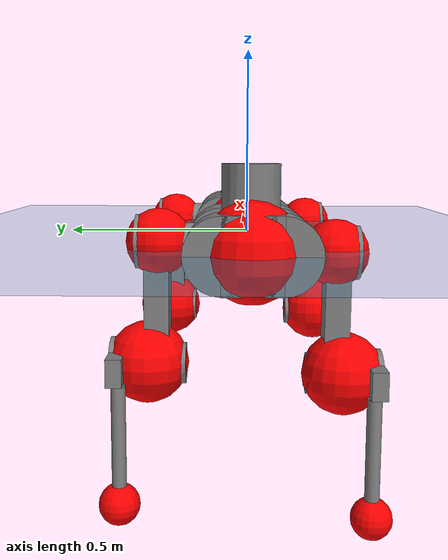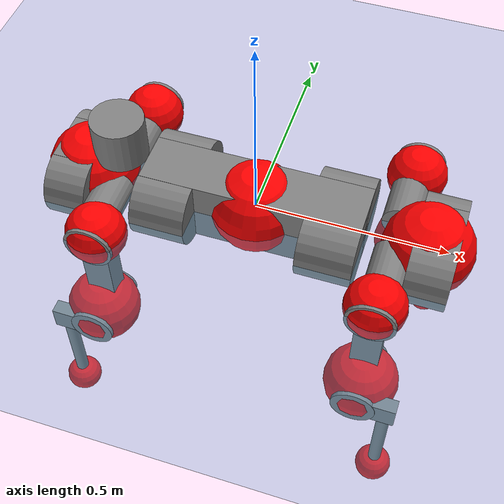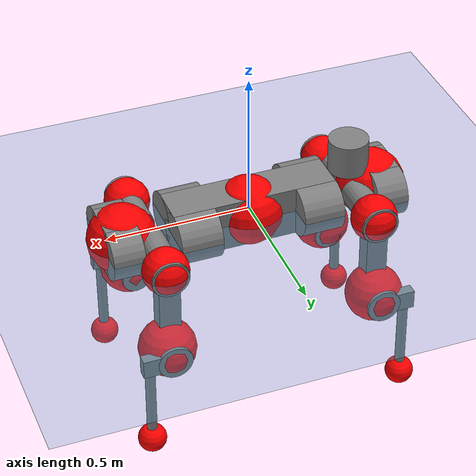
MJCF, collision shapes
<mujoco model="anymal_c">
  <compiler angle="radian" assetdir="assets" balanceinertia="true" inertiafromgeom="false"/>

  <option timestep="0.005" density="1.2" viscosity="2e-05"/>

  <size nkey="1"/>

  <visual>
    <quality shadowsize="8192"/>
    <map shadowclip="0.5"/>
  </visual>

  <default>
    <default class="/">
      <material specular="0" shininess="0.25"/>
      <geom contype="0" conaffinity="0" group="1" solref="-1000 -80"/>
      <site size="0.01 0.005 0.005" group="5"/>
      <general forcelimited="true" forcerange="-80 80" biastype="affine" gainprm="80" biasprm="0 -80 -2"/>
      <default class="anymal_c">
        <joint armature="0.01" damping="0.01" frictionloss="0.1"/>
        <default class="visual">
          <geom type="mesh" group="2"/>
          <default class="visual_zflip"/>
        </default>
        <default class="collision">
          <geom type="cylinder" group="3"/>
          <default class="foot">
            <geom size="0.03 0 0" type="sphere" condim="6" priority="1" friction="0.8 0.02 0.01" solimp="0.015 1 0.03"/>
          </default>
        </default>
      </default>
      <default class="reward_collision_sphere">
        <geom group="5" rgba="1 0 0 1"/>
      </default>
    </default>
  </default>

  <asset>
    <texture type="skybox" colorspace="auto" name="//unnamed_texture_0" builtin="gradient" rgb1="0.95 0.95 0.95" rgb2="0.95 0.95 0.95" width="100" height="600"/>
    <texture type="2d" colorspace="auto" name="texplane" builtin="checker" rgb1="0.345 0.575 0.748" rgb2="0.345 0.575 0.748" markrgb="1 1 1" width="512" height="512"/>
    <texture type="2d" colorspace="linear" name="base" file="base.png"/>
    <texture type="2d" colorspace="linear" name="top_shell" file="top_shell.png"/>
    <texture type="2d" colorspace="linear" name="bottom_shell" file="bottom_shell.png"/>
    <texture type="2d" colorspace="linear" name="remote" file="remote.png"/>
    <texture type="2d" colorspace="linear" name="hatch" file="hatch.png"/>
    <texture type="2d" colorspace="linear" name="handle" file="handle.png"/>
    <texture type="2d" colorspace="linear" name="face" file="face.png"/>
    <texture type="2d" colorspace="linear" name="battery" file="battery.png"/>
    <texture type="2d" colorspace="linear" name="lidar_cage" file="lidar_cage.png"/>
    <texture type="2d" colorspace="linear" name="depth_camera" file="depth_camera.png"/>
    <texture type="2d" colorspace="linear" name="wide_angle_camera" file="wide_angle_camera.png"/>
    <texture type="2d" colorspace="linear" name="lidar" file="lidar.png"/>
    <texture type="2d" colorspace="linear" name="drive" file="drive.png"/>
    <texture type="2d" colorspace="linear" name="hip_l" file="hip_l.png"/>
    <texture type="2d" colorspace="linear" name="shank_l" file="shank_l.png"/>
    <texture type="2d" colorspace="linear" name="foot" file="foot.png"/>
    <texture type="2d" colorspace="linear" name="thigh" file="thigh.png"/>
    <texture type="2d" colorspace="linear" name="shank_r" file="shank_r.png"/>
    <texture type="2d" colorspace="linear" name="hip_r" file="hip_r.png"/>
    <material name="MatPlane" class="/" texture="texplane" texuniform="true" texrepeat="2 2" specular="0.9" shininess="0.5"/>
    <material name="black_plastic" class="/" rgba="0.007 0.007 0.007 1"/>
    <material name="green" class="/" rgba="0.052 0.178 0.033 1"/>
    <material name="red" class="/" rgba="0.178 0.006 0.005 1"/>
    <material name="yellow" class="/" rgba="0.178 0.119 0.006 1"/>
    <material name="lwl" class="/" rgba="0.8 0.8 0.8 1"/>
    <material name="base" class="/" texture="base"/>
    <material name="top_shell" class="/" texture="top_shell"/>
    <material name="bottom_shell" class="/" texture="bottom_shell"/>
    <material name="hip_l" class="/" texture="hip_l"/>
    <material name="thigh" class="/" texture="thigh"/>
    <material name="shank_l" class="/" texture="shank_l"/>
    <material name="foot" class="/" texture="foot"/>
    <material name="hip_r" class="/" texture="hip_r"/>
    <material name="shank" class="/" texture="shank_r"/>
    <material name="hatch" class="/" texture="hatch"/>
    <material name="remote" class="/" texture="remote"/>
    <material name="handle" class="/" texture="handle"/>
    <material name="face" class="/" texture="face"/>
    <material name="depth_camera" class="/" texture="depth_camera"/>
    <material name="wide_angle_camera" class="/" texture="wide_angle_camera"/>
    <material name="battery" class="/" texture="battery"/>
    <material name="lidar_cage" class="/" texture="lidar_cage"/>
    <material name="lidar" class="/" texture="lidar"/>
    <material name="drive" class="/" texture="drive"/>
    <mesh name="base_0" class="/" file="base_0.obj"/>
    <mesh name="base_1" class="/" file="base_1.obj"/>
    <mesh name="base_2" class="/" file="base_2.obj"/>
    <mesh name="base_3" class="/" file="base_3.obj"/>
    <mesh name="base_4" class="/" file="base_4.obj"/>
    <mesh name="base_5" class="/" file="base_5.obj"/>
    <mesh name="top_shell" class="/" file="top_shell.obj"/>
    <mesh name="bottom_shell" class="/" file="bottom_shell.obj"/>
    <mesh name="remote" class="/" file="remote.obj"/>
    <mesh name="handle" class="/" file="handle.obj"/>
    <mesh name="face" class="/" file="face.obj"/>
    <mesh name="wide_angle_camera" class="/" file="wide_angle_camera.obj"/>
    <mesh name="depth_camera" class="/" file="depth_camera.obj"/>
    <mesh name="battery" class="/" file="battery.obj"/>
    <mesh name="lidar_cage" class="/" file="lidar_cage.obj"/>
    <mesh name="lidar" class="/" file="lidar.obj"/>
    <mesh name="drive" class="/" file="drive.obj"/>
    <mesh name="hip_l" class="/" file="hip_l.obj"/>
    <mesh name="thigh" class="/" file="thigh.obj"/>
    <mesh name="shank_l" class="/" file="shank_l.obj"/>
    <mesh name="foot" class="/" file="foot.obj"/>
    <mesh name="hip_r" class="/" file="hip_r.obj"/>
    <mesh name="hatch" class="/" file="hatch.obj"/>
    <mesh name="shank_r" class="/" file="shank_r.obj"/>
  </asset>

  <worldbody>
    <geom name="floor" class="/" size="100 100 0.125" type="plane" group="0" material="MatPlane"/>
    <light name="toplight_shadow" class="/" pos="0 0 5" dir="0.0990148 0.0990148 -0.990148" type="directional" ambient="0.04 0.04 0.04" diffuse="0.55 0.55 0.55" specular="0.12 0.12 0.12"/>
    <light name="toplight_fill" class="/" pos="0 0 5" dir="0.0990148 0.0990148 -0.990148" type="directional" castshadow="false" ambient="0.04 0.04 0.04" diffuse="0.3 0.3 0.3" specular="0.08 0.08 0.08"/>
    <body name="trunk" childclass="anymal_c" pos="0.00162605 0.000795127 -0.00286611" quat="0.999998 0.000939294 0.00134024 0.00122948">
      <inertial pos="0.0150648 0.00948252 0.0558681" quat="0.499748 0.501554 0.495636 0.503032" mass="16.1491" diaginertia="0.627173 0.456109 0.258534"/>
      <joint name="//unnamed_joint_0" type="free" armature="0" damping="0" frictionloss="0"/>
      <geom name="//unnamed_geom_1" class="visual" material="green" mesh="base_0"/>
      <geom name="//unnamed_geom_2" class="visual" material="yellow" mesh="base_1"/>
      <geom name="//unnamed_geom_3" class="visual" material="red" mesh="base_2"/>
      <geom name="//unnamed_geom_4" class="visual" material="black_plastic" mesh="base_3"/>
      <geom name="//unnamed_geom_5" class="visual" material="lwl" mesh="base_4"/>
      <geom name="//unnamed_geom_6" class="visual" material="base" mesh="base_5"/>
      <geom name="trunk_1" class="collision" size="0.286979 0.0692707 0.0890624" type="box"/>
      <geom name="trunk_2" class="collision" size="0.0890624 0.0717447" pos="0.215735 0.0659158 0" quat="0.707107 0 0.707107 0"/>
      <geom name="trunk_3" class="collision" size="0.0890624 0.0717447" pos="-0.215735 0.0659158 0" quat="0.707107 0 0.707107 0"/>
      <geom name="trunk_4" class="collision" size="0.0890624 0.0717447" pos="0.215735 -0.0659158 0" quat="0.707107 0 0.707107 0"/>
      <geom name="trunk_5" class="collision" size="0.0890624 0.0717447" pos="-0.215735 -0.0659158 0" quat="0.707107 0 0.707107 0"/>
      <geom name="//unnamed_geom_12" class="visual" material="top_shell" mesh="top_shell"/>
      <geom name="//unnamed_geom_13" class="visual" material="bottom_shell" mesh="bottom_shell"/>
      <geom name="//unnamed_geom_14" class="visual" material="remote" mesh="remote"/>
      <geom name="//unnamed_geom_15" class="visual" material="handle" mesh="handle"/>
      <geom name="//unnamed_geom_16" class="visual" pos="0.411136 0 0" quat="1 0 0 0" material="face" mesh="face"/>
      <geom name="trunk_6" class="collision" size="0.054427 0.0692707 0.0890624" pos="0.46569 0 0" type="box"/>
      <geom name="//unnamed_geom_18" class="collision" size="0.0890624 0.054427" pos="0.46569 0.0659158 0" quat="0.707107 0 0.707107 0"/>
      <geom name="//unnamed_geom_19" class="collision" size="0.0890624 0.054427" pos="0.46569 -0.0659158 0" quat="0.707107 0 0.707107 0"/>
      <geom name="//unnamed_geom_20" class="visual" pos="0.457905 0 -0.0305573" quat="0.965926 0 0.258819 0" material="depth_camera" mesh="depth_camera"/>
      <geom name="//unnamed_geom_21" class="visual" pos="0.508837 0 0.015497" material="wide_angle_camera" mesh="wide_angle_camera"/>
      <geom name="//unnamed_geom_22" class="visual_zflip" pos="-0.411136 0 0" quat="0 0 0 1" material="face" mesh="face"/>
      <geom name="trunk_7" class="collision" size="0.054427 0.0692707 0.0890624" pos="-0.46569 0 0" quat="0 0 0 1" type="box"/>
      <geom name="//unnamed_geom_24" class="collision" size="0.0890624 0.054427" pos="-0.46569 -0.0659158 0" quat="0 -0.707107 0 0.707107"/>
      <geom name="//unnamed_geom_25" class="collision" size="0.0890624 0.054427" pos="-0.46569 0.0659158 0" quat="0 -0.707107 0 0.707107"/>
      <geom name="//unnamed_geom_26" class="visual" pos="-0.457905 0 -0.0305573" quat="0 -0.258819 0 0.965926" material="depth_camera" mesh="depth_camera"/>
      <geom name="//unnamed_geom_27" class="visual_zflip" pos="-0.508837 0 0.015497" quat="0 0 0 1" material="wide_angle_camera" mesh="wide_angle_camera"/>
      <geom name="//unnamed_geom_28" class="visual" material="battery" mesh="battery"/>
      <geom name="//unnamed_geom_29" class="visual" pos="0 0.0713416 0.0297435" quat="0.683013 -0.183013 0.183013 0.683013" material="depth_camera" mesh="depth_camera"/>
      <geom name="//unnamed_geom_30" class="visual" pos="0 -0.0713416 0.0297435" quat="0.683013 0.183013 0.183013 -0.683013" material="depth_camera" mesh="depth_camera"/>
      <geom name="//unnamed_geom_31" class="visual" pos="-0.361046 0 0.0760877" quat="1 0 0 0" material="lidar_cage" mesh="lidar_cage"/>
      <geom name="trunk_8" class="collision" size="0.0692707 0.0593749" pos="-0.361046 0 0.1382"/>
      <geom name="//unnamed_geom_33" class="visual" pos="-0.361046 -1.97338e-05 0.147206" quat="0.707107 0 0 -0.707107" material="lidar" mesh="lidar"/>
      <geom name="//unnamed_geom_34" class="visual" pos="0.297466 0.0979653 -1.61378e-09" quat="0.258819 0.965926 0 0" material="drive" mesh="drive"/>
      <geom name="//unnamed_geom_35" class="visual" pos="0.297466 -0.0979653 1.61378e-09" quat="0.258819 -0.965926 0 0" material="drive" mesh="drive"/>
      <geom name="//unnamed_geom_36" class="visual" pos="-0.297466 0.0979653 1.61378e-09" quat="0 0 0.965926 -0.258819" material="drive" mesh="drive"/>
      <geom name="//unnamed_geom_37" class="visual" pos="-0.297466 -0.0979653 -1.61378e-09" quat="0 0 -0.965926 -0.258819" material="drive" mesh="drive"/>
      <geom name="//unnamed_geom_38" class="visual" pos="0.115059 0 0.0755701" quat="1 0 0 0" material="hatch" mesh="hatch"/>
      <geom name="//unnamed_geom_39" class="reward_collision_sphere" size="0.11875"/>
      <geom name="//unnamed_geom_40" class="reward_collision_sphere" size="0.11875" pos="0.446348 0 0"/>
      <geom name="//unnamed_geom_41" class="reward_collision_sphere" size="0.11875" pos="-0.446348 0 0"/>
      <site name="imu" pos="0.193569 0.0100952 0.100842" size="0.00989582"/>
      <camera name="track" pos="0 -1.88331 0" quat="0.707107 0.707107 0 0" mode="trackcom"/>
      <camera name="ego_camera" pos="0.446348 0 -0.0414083" quat="-0.5 -0.5 0.5 0.5"/>
      <body name="LF_HIP" pos="0.305472 0.106406 0.00452812" quat="0.258804 0.96593 -7.21207e-05 -0.00015439">
        <inertial pos="0.0566076 -0.00651822 -0.00949944" quat="-0.127802 0.71006 -0.13461 0.679236" mass="2.92847" diaginertia="0.00663775 0.00466736 0.00455721"/>
        <joint name="LF_HAA" pos="0 0 0" axis="0.999951 0.00144104 0.00974745" stiffness="0.0330045" range="-0.711719 0.414598" armature="0.0106598" damping="0" frictionloss="0.132129"/>
        <geom name="//unnamed_geom_42" class="visual" pos="0 -9.49316e-05 1.55924e-05" quat="0.258819 -0.965926 0 0" material="hip_l" mesh="hip_l"/>
        <geom name="//unnamed_geom_43" class="visual" pos="0.0594139 -0.0713644 -0.0418942" quat="0.183013 -0.683013 0.683013 0.183013" material="drive" mesh="drive"/>
        <geom name="//unnamed_geom_44" class="collision" size="0.0494791 0.0692707" pos="0.0594139 -0.011262 -0.0071481" quat="-0.353553 -0.612372 0.612372 -0.353553"/>
        <body name="LF_THIGH" pos="0.0648545 -0.0797313 -0.0477632" quat="0.178559 -0.685114 0.68215 0.182772">
          <inertial pos="0.0323095 0.000583337 -0.259575" quat="0.995304 -0.000125597 -0.0860607 0.044312" mass="3.20466" diaginertia="0.0286543 0.0251408 0.00478082"/>
          <joint name="LF_HFE" pos="0 0 0" axis="0.999967 0.00228253 0.00773903" stiffness="0.0103708" range="-3.33212 3.00808" armature="0.0107345" damping="0" frictionloss="0.126152"/>
          <geom name="//unnamed_geom_45" class="visual" pos="0.000999366 1.57477e-06 0" quat="0.707107 0 0 -0.707107" material="thigh" mesh="thigh"/>
          <geom name="//unnamed_geom_46" class="collision" size="0.0643228 0.0395833" pos="0.0396754 0 0" quat="0.5 0.5 -0.5 -0.5"/>
          <geom name="//unnamed_geom_47" class="collision" size="0.0371093 0.0296875 0.139842" pos="0.0297565 0 -0.146289" quat="0.707107 0 0 -0.707107" type="box"/>
          <geom name="//unnamed_geom_48" class="visual" pos="0.099486 0 -0.295034" quat="1 0 0 0" material="drive" mesh="drive"/>
          <geom name="//unnamed_geom_49" class="collision" size="0.0494791 0.0692707" pos="0.0300541 0 -0.295034" quat="0.707107 0 0.707107 0"/>
          <geom name="//unnamed_geom_50" class="reward_collision_sphere" size="0.0791665" pos="0.0247971 0 0"/>
          <body name="LF_SHANK" pos="0.0984588 -0.00995904 -0.29766" quat="1 0.000533557 0.000292924 -3.27689e-05">
            <inertial pos="0.00412922 -0.0585225 -0.0790503" quat="0.992843 -0.116827 -0.00877472 -0.0231895" mass="0.583018" diaginertia="0.010902 0.00694037 0.00132253"/>
            <joint name="LF_KFE" pos="0 0 0" axis="0.999985 0.00521504 0.00167272" stiffness="0.0462417" range="-3.27058 3.16869" armature="0.00868763" damping="0.0151665" frictionloss="0.106887"/>
            <geom name="//unnamed_geom_51" class="visual" pos="0.000325871 0.00173756 0" quat="0.707107 0 0 -0.707107" material="shank_l" mesh="shank_l"/>
            <geom name="LF_kfe_act" class="collision" size="0.0593749 0.0197916" pos="0.0198377 0 0" quat="0.5 0.5 -0.5 -0.5"/>
            <geom name="//unnamed_geom_53" class="collision" size="0.0569 0.0333984 0.0188021" pos="0.0198377 -0.0541442 0" quat="0.5 0.5 -0.5 -0.5" type="box"/>
            <geom name="//unnamed_geom_54" class="visual" pos="0.012944 -0.0822586 -0.349869" quat="0.382683 0 0 -0.92388" material="foot" mesh="foot"/>
            <geom name="LF_calf" class="collision" size="0.0173177 0.13978" pos="0.0129441 -0.0828185 -0.174934" quat="0.707107 0 0 -0.707107"/>
            <geom name="LF_foot" class="foot" size="0.0325118" pos="0.0129441 -0.0828185 -0.326577" quat="0.707107 0 0 -0.707107"/>
            <geom name="//unnamed_geom_57" class="reward_collision_sphere" size="0.0989582" pos="-0.0495942 0 0"/>
            <geom name="//unnamed_geom_58" class="reward_collision_sphere" size="0.0494791" pos="0.0129441 -0.0828185 -0.326577"/>
            <site name="LF_foot" class="foot" pos="0.0129441 -0.0828185 -0.326577" quat="0.707107 0 0 -0.707107" size="0.00989582"/>
          </body>
        </body>
      </body>
      <body name="RF_HIP" pos="0.308453 -0.0979347 0.000961431" quat="0.258829 -0.965923 -0.00025409 0.000134381">
        <inertial pos="0.0625531 0.02724 -0.00203957" quat="0.137501 0.639599 0.107574 0.748622" mass="2.65054" diaginertia="0.00619219 0.00315472 0.00427819"/>
        <joint name="RF_HAA" pos="0 0 0" axis="0.999108 0.0248021 0.0341715" range="-0.495914 0.706012" armature="0.00995543" damping="0.0432196" frictionloss="0.083415"/>
        <geom name="//unnamed_geom_59" class="visual" pos="0 9.49309e-05 1.55924e-05" quat="0.258819 0.965926 0 0" material="hip_r" mesh="hip_r"/>
        <geom name="//unnamed_geom_60" class="visual" pos="0.0594139 0.0713644 -0.0418942" quat="0.183013 0.683013 0.683013 -0.183013" material="drive" mesh="drive"/>
        <geom name="//unnamed_geom_61" class="collision" size="0.0494791 0.0692707" pos="0.0594139 0.011262 -0.0071481" quat="-0.353553 0.612372 0.612372 0.353553"/>
        <body name="RF_THIGH" pos="0.0543173 0.0732651 -0.0343407" quat="0.185712 0.680223 0.684615 -0.184691">
          <inertial pos="0.0198377 0.00228584 -0.248849" quat="0.989196 -0.0112524 -0.105838 0.100814" mass="2.69061" diaginertia="0.0315603 0.0247871 0.00434253"/>
          <joint name="RF_HFE" pos="0 0 0" axis="0.999949 -0.00992809 0.002065" stiffness="0.0199909" range="-3.19741 3.15493" armature="0.0127794" damping="0.00802884" frictionloss="0.0803935"/>
          <geom name="//unnamed_geom_62" class="visual" pos="0.000999366 1.57477e-06 0" quat="0.707107 0 0 -0.707107" material="thigh" mesh="thigh"/>
          <geom name="//unnamed_geom_63" class="collision" size="0.0643228 0.0395833" pos="0.0396754 0 0" quat="0.5 0.5 0.5 0.5"/>
          <geom name="//unnamed_geom_64" class="collision" size="0.0371093 0.0296875 0.139842" pos="0.0297565 0 -0.146289" quat="0.707107 0 0 0.707107" type="box"/>
          <geom name="//unnamed_geom_65" class="visual" pos="0.099486 0 -0.295034" quat="1 0 0 0" material="drive" mesh="drive"/>
          <geom name="//unnamed_geom_66" class="collision" size="0.0494791 0.0692707" pos="0.0300541 0 -0.295034" quat="0.707107 0 0.707107 0"/>
          <geom name="//unnamed_geom_67" class="reward_collision_sphere" size="0.0791665" pos="0.0247971 0 0"/>
          <body name="RF_SHANK" pos="0.105134 0.00152862 -0.294975" quat="0.999996 0.00181084 0.000204166 -0.002074">
            <inertial pos="0.0134328 0.0578284 -0.0836338" quat="0.993334 0.089878 -0.0389153 0.0607805" mass="0.475234" diaginertia="0.00835609 0.0064613 0.00121284"/>
            <joint name="RF_KFE" pos="0 0 0" axis="0.999968 0.00473717 0.00650316" stiffness="0.0524934" range="-2.9212 3.25738" armature="0.00532234" damping="0" frictionloss="0.0784631"/>
            <geom name="//unnamed_geom_68" class="visual" pos="0.00032587 -0.00173756 0" quat="0.707107 0 0 0.707107" material="shank" mesh="shank_r"/>
            <geom name="RF_kfe_act" class="collision" size="0.0593749 0.0197916" pos="0.0198377 0 0" quat="0.5 0.5 0.5 0.5"/>
            <geom name="//unnamed_geom_70" class="collision" size="0.0569 0.0333984 0.0188021" pos="0.0198377 0.0541442 0" quat="0.5 0.5 0.5 0.5" type="box"/>
            <geom name="//unnamed_geom_71" class="visual" pos="0.0129442 0.0822586 -0.349869" quat="0.382683 0 0 0.92388" material="foot" mesh="foot"/>
            <geom name="RF_calf" class="collision" size="0.0173177 0.13978" pos="0.0129441 0.0828185 -0.174934" quat="0.707107 0 0 0.707107"/>
            <geom name="RF_foot" class="foot" size="0.0384525" pos="0.0129441 0.0828185 -0.326577" quat="0.707107 0 0 0.707107"/>
            <geom name="//unnamed_geom_74" class="reward_collision_sphere" size="0.0989582" pos="-0.0495942 0 0"/>
            <geom name="//unnamed_geom_75" class="reward_collision_sphere" size="0.0494791" pos="0.0129441 0.0828185 -0.326577"/>
            <site name="RF_foot" class="foot" pos="0.0129441 0.0828185 -0.326577" quat="0.707107 0 0 0.707107" size="0.00989582"/>
          </body>
        </body>
      </body>
      <body name="LH_HIP" pos="-0.307217 0.105076 0.00927525" quat="-0.000425149 -0.000104532 0.965817 -0.259226">
        <inertial pos="0.056547 0.0074525 0.00277785" quat="0.133461 0.65453 0.15728 0.727352" mass="2.32615" diaginertia="0.00406972 0.00318333 0.00359069"/>
        <joint name="LH_HAA" pos="0 0 0" axis="0.999113 -0.0264309 -0.0327686" stiffness="0.0187644" range="-0.528427 0.662115" armature="0.00911547" damping="0.0570222" frictionloss="0.0995786"/>
        <geom name="//unnamed_geom_76" class="visual" pos="0 9.49309e-05 1.55924e-05" quat="-0.258819 -0.965926 0 0" material="hip_r" mesh="hip_r"/>
        <geom name="//unnamed_geom_77" class="visual" pos="0.0594139 0.0713644 -0.0418942" quat="0.183013 0.683013 0.683013 -0.183013" material="drive" mesh="drive"/>
        <geom name="//unnamed_geom_78" class="collision" size="0.0494791 0.0692707" pos="0.0594139 0.011262 -0.0071481" quat="-0.353553 0.612372 0.612372 0.353553"/>
        <body name="LH_THIGH" pos="0.0570363 0.0722835 -0.047521" quat="0.183044 0.683934 0.681896 -0.183702">
          <inertial pos="0.0431306 -0.00270634 -0.242958" quat="0.99315 -0.00424549 -0.0733373 0.0908616" mass="3.38754" diaginertia="0.0363954 0.0219661 0.00520506"/>
          <joint name="LH_HFE" pos="0 0 0" axis="0.999998 0.00169109 0.000487659" range="-3.04355 3.27184" armature="0.00945055" damping="0.0454911" frictionloss="0.0969286"/>
          <geom name="//unnamed_geom_79" class="visual" pos="0.000999366 1.57477e-06 0" quat="0.707107 0 0 -0.707107" material="thigh" mesh="thigh"/>
          <geom name="//unnamed_geom_80" class="collision" size="0.0643228 0.0395833" pos="0.0396754 0 0" quat="0.5 0.5 -0.5 -0.5"/>
          <geom name="//unnamed_geom_81" class="collision" size="0.0371093 0.0296875 0.139842" pos="0.0297565 0 -0.146289" quat="0.707107 0 0 -0.707107" type="box"/>
          <geom name="//unnamed_geom_82" class="visual" pos="0.099486 0 -0.295034" quat="1 0 0 0" material="drive" mesh="drive"/>
          <geom name="//unnamed_geom_83" class="collision" size="0.0494791 0.0692707" pos="0.0300541 0 -0.295034" quat="0.707107 0 0.707107 0"/>
          <geom name="//unnamed_geom_84" class="reward_collision_sphere" size="0.0791665" pos="0.0247971 0 0"/>
          <body name="LH_SHANK" pos="0.10311 -0.00326337 -0.292643" quat="1 -5.79645e-05 0.000254225 0.000148212">
            <inertial pos="0.000567672 0.0479619 -0.0809291" quat="0.994158 0.0980931 0.0192388 0.0407097" mass="0.478295" diaginertia="0.00890245 0.00507325 0.00108666"/>
            <joint name="LH_KFE" pos="0 0 0" axis="0.999986 0.00138119 0.00514055" range="-3.32695 3.27985" armature="0.00471249" damping="0" frictionloss="0.142629"/>
            <geom name="//unnamed_geom_85" class="visual" pos="0.00032587 -0.00173756 0" quat="-0.707107 0 0 -0.707107" material="shank" mesh="shank_r"/>
            <geom name="LH_kfe_act" class="collision" size="0.0593749 0.0197916" pos="0.0198377 0 0" quat="0.5 0.5 -0.5 -0.5"/>
            <geom name="//unnamed_geom_87" class="collision" size="0.0569 0.0333984 0.0188021" pos="0.0198377 0.0541442 0" quat="0.5 0.5 -0.5 -0.5" type="box"/>
            <geom name="//unnamed_geom_88" class="visual" pos="0.0129442 0.0822586 -0.349869" quat="-0.382683 0 0 -0.92388" material="foot" mesh="foot"/>
            <geom name="LH_calf" class="collision" size="0.0173177 0.13978" pos="0.0129441 0.0828185 -0.174934" quat="0.707107 0 0 -0.707107"/>
            <geom name="LH_foot" class="foot" size="0.0260297" pos="0.0129441 0.0828185 -0.326577" quat="0.707107 0 0 -0.707107"/>
            <geom name="//unnamed_geom_91" class="reward_collision_sphere" size="0.0989582" pos="-0.0495942 0 0"/>
            <geom name="//unnamed_geom_92" class="reward_collision_sphere" size="0.0494791" pos="0.0129441 0.0828185 -0.326577"/>
            <site name="LH_foot" class="foot" pos="0.0129441 0.0828185 -0.326577" quat="0.707107 0 0 -0.707107" size="0.00989582"/>
          </body>
        </body>
      </body>
      <body name="RH_HIP" pos="-0.310071 -0.0970387 -0.00364515" quat="-0.000268095 -6.77756e-05 -0.965976 -0.25863">
        <inertial pos="0.0620167 -0.0195894 0.00265175" quat="-0.0644725 0.719267 -0.14195 0.677015" mass="2.7639" diaginertia="0.00653564 0.00428249 0.0044909"/>
        <joint name="RH_HAA" pos="0 0 0" axis="0.998648 -0.0457846 0.0245981" stiffness="0.00463982" range="-0.521748 0.388553" armature="0.0117454" damping="0.0340502" frictionloss="0.0993836"/>
        <geom name="//unnamed_geom_93" class="visual" pos="0 -9.49316e-05 1.55924e-05" quat="-0.258819 0.965926 0 0" material="hip_l" mesh="hip_l"/>
        <geom name="//unnamed_geom_94" class="visual" pos="0.0594139 -0.0713644 -0.0418942" quat="-0.183013 0.683013 -0.683013 -0.183013" material="drive" mesh="drive"/>
        <geom name="//unnamed_geom_95" class="collision" size="0.0494791 0.0692707" pos="0.0594139 -0.011262 -0.0071481" quat="0.353553 0.612372 -0.612372 0.353553"/>
        <body name="RH_THIGH" pos="0.0479357 -0.0713536 -0.0335651" quat="-0.182067 0.686264 -0.68028 -0.181968">
          <inertial pos="0.0323439 -0.00568705 -0.25567" quat="0.992841 -0.00583558 -0.0808919 0.0876845" mass="3.51958" diaginertia="0.0343855 0.0235783 0.00534528"/>
          <joint name="RH_HFE" pos="0 0 0" axis="1 0.000626642 0.000509865" range="-3.25656 3.18723" armature="0.0101311" damping="0" frictionloss="0.0928654"/>
          <geom name="//unnamed_geom_96" class="visual" pos="0.000999366 1.57477e-06 0" quat="0.707107 0 0 -0.707107" material="thigh" mesh="thigh"/>
          <geom name="//unnamed_geom_97" class="collision" size="0.0643228 0.0395833" pos="0.0396754 0 0" quat="0.5 0.5 0.5 0.5"/>
          <geom name="//unnamed_geom_98" class="collision" size="0.0371093 0.0296875 0.139842" pos="0.0297565 0 -0.146289" quat="0.707107 0 0 0.707107" type="box"/>
          <geom name="//unnamed_geom_99" class="visual" pos="0.099486 0 -0.295034" quat="1 0 0 0" material="drive" mesh="drive"/>
          <geom name="//unnamed_geom_100" class="collision" size="0.0494791 0.0692707" pos="0.0300541 0 -0.295034" quat="0.707107 0 0.707107 0"/>
          <geom name="//unnamed_geom_101" class="reward_collision_sphere" size="0.0791665" pos="0.0247971 0 0"/>
          <body name="RH_SHANK" pos="0.0983601 -0.00846306 -0.29129" quat="0.999986 -0.00413886 -0.00299832 0.00146053">
            <inertial pos="-0.00318615 -0.0536 -0.0853943" quat="0.993857 -0.108279 0.0219947 0.00629111" mass="0.546119" diaginertia="0.0101108 0.00680344 0.00142021"/>
            <joint name="RH_KFE" pos="0 0 0" axis="0.999997 -0.00188407 0.00130061" range="-3.09291 2.93704" armature="0.0101586" damping="0" frictionloss="0.0788524"/>
            <geom name="//unnamed_geom_102" class="visual" pos="0.000325871 0.00173756 0" quat="0.707107 0 0 -0.707107" material="shank_l" mesh="shank_l"/>
            <geom name="RH_kfe_act" class="collision" size="0.0593749 0.0197916" pos="0.0198377 0 0" quat="0.5 0.5 0.5 0.5"/>
            <geom name="//unnamed_geom_104" class="collision" size="0.0569 0.0333984 0.0188021" pos="0.0198377 -0.0541442 0" quat="0.5 0.5 0.5 0.5" type="box"/>
            <geom name="//unnamed_geom_105" class="visual" pos="0.012944 -0.0822586 -0.349869" quat="0.382683 0 0 -0.92388" material="foot" mesh="foot"/>
            <geom name="RH_calf" class="collision" size="0.0173177 0.13978" pos="0.0129441 -0.0828185 -0.174934" quat="0.707107 0 0 0.707107"/>
            <geom name="RH_foot" class="foot" size="0.037196" pos="0.0129441 -0.0828185 -0.326577" quat="0.707107 0 0 0.707107"/>
            <geom name="//unnamed_geom_108" class="reward_collision_sphere" size="0.0989582" pos="-0.0495942 0 0"/>
            <geom name="//unnamed_geom_109" class="reward_collision_sphere" size="0.0494791" pos="0.0129441 -0.0828185 -0.326577"/>
            <site name="RH_foot" class="foot" pos="0.0129441 -0.0828185 -0.326577" quat="0.707107 0 0 0.707107" size="0.00989582"/>
          </body>
        </body>
      </body>
    </body>
  </worldbody>

  <contact>
    <pair class="/" geom1="floor" geom2="LF_foot" name="//unnamed_contact_0"/>
    <pair class="/" geom1="floor" geom2="RF_foot" name="//unnamed_contact_1"/>
    <pair class="/" geom1="floor" geom2="LH_foot" name="//unnamed_contact_2"/>
    <pair class="/" geom1="floor" geom2="RH_foot" name="//unnamed_contact_3"/>
  </contact>

  <actuator>
    <general name="LF_HAA" class="/" joint="LF_HAA" forcerange="-103.321 103.321" gainprm="90.0592" biasprm="0 -90.0592 -2.23928"/>
    <general name="LF_HFE" class="/" joint="LF_HFE" forcerange="-112.415 112.415" gainprm="90.0592" biasprm="0 -90.0592 -2.23928"/>
    <general name="LF_KFE" class="/" joint="LF_KFE" forcerange="-87.304 87.304" gainprm="90.0592" biasprm="0 -90.0592 -2.23928"/>
    <general name="RF_HAA" class="/" joint="RF_HAA" forcerange="-85.4442 85.4442" gainprm="90.0592" biasprm="0 -90.0592 -2.23928"/>
    <general name="RF_HFE" class="/" joint="RF_HFE" forcerange="-57.8981 57.8981" gainprm="90.0592" biasprm="0 -90.0592 -2.23928"/>
    <general name="RF_KFE" class="/" joint="RF_KFE" forcerange="-81.4225 81.4225" gainprm="90.0592" biasprm="0 -90.0592 -2.23928"/>
    <general name="LH_HAA" class="/" joint="LH_HAA" forcerange="-78.3511 78.3511" gainprm="90.0592" biasprm="0 -90.0592 -2.23928"/>
    <general name="LH_HFE" class="/" joint="LH_HFE" forcerange="-101.684 101.684" gainprm="90.0592" biasprm="0 -90.0592 -2.23928"/>
    <general name="LH_KFE" class="/" joint="LH_KFE" forcerange="-70.3637 70.3637" gainprm="90.0592" biasprm="0 -90.0592 -2.23928"/>
    <general name="RH_HAA" class="/" joint="RH_HAA" forcerange="-79.1227 79.1227" gainprm="90.0592" biasprm="0 -90.0592 -2.23928"/>
    <general name="RH_HFE" class="/" joint="RH_HFE" forcerange="-51.3743 51.3743" gainprm="90.0592" biasprm="0 -90.0592 -2.23928"/>
    <general name="RH_KFE" class="/" joint="RH_KFE" forcerange="-76.2595 76.2595" gainprm="90.0592" biasprm="0 -90.0592 -2.23928"/>
  </actuator>

  <sensor>
    <gyro site="imu" name="imu_angular_velocity"/>
    <velocimeter site="imu" name="imu_linear_velocity"/>
    <framelinvel objtype="site" objname="LF_foot" name="LF_foot_global_linear_velocity"/>
    <framelinvel objtype="site" objname="RF_foot" name="RF_foot_global_linear_velocity"/>
    <framelinvel objtype="site" objname="LH_foot" name="LH_foot_global_linear_velocity"/>
    <framelinvel objtype="site" objname="RH_foot" name="RH_foot_global_linear_velocity"/>
  </sensor>

  <keyframe>
    <key name="home" qpos="0 0 0.55 1 0 0 0 0 0.4 -0.8 0 -0.4 0.8 0 -0.4 0.8 0 0.4 -0.8"/>
  </keyframe>
</mujoco>
